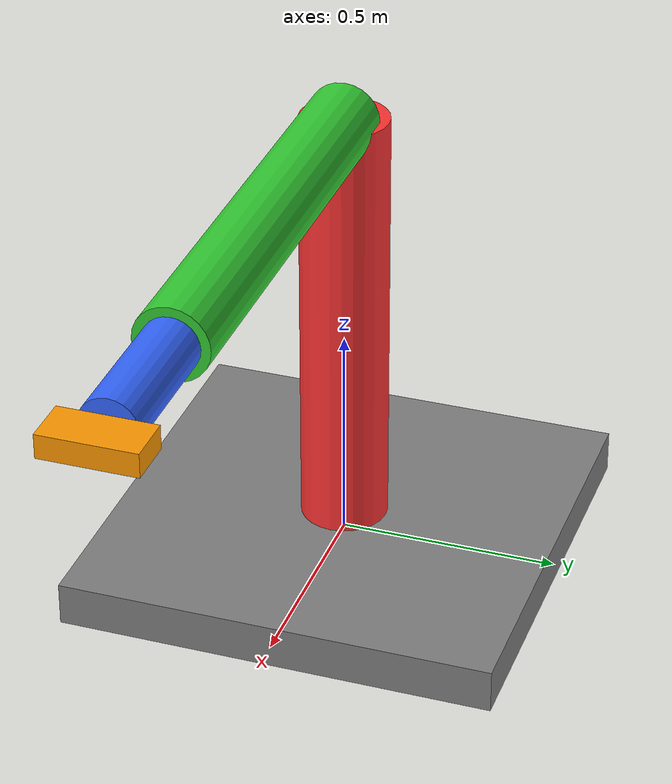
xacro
<?xml version="1.0"?>
<robot name="multi_joint_robot" xmlns:xacro="http://www.ros.org/wiki/xacro">

    <!-- ============ 파라미터 정의 ============ -->
    <xacro:property name="link_radius" value="0.1"/>
    <xacro:property name="link_length" value="1.0"/>

    <!-- ============ 색상(Material) 정의 ============ -->
    <material name="gray">    <color rgba="0.5 0.5 0.5 1.0"/> </material>
    <material name="red">     <color rgba="1.0 0.2 0.2 1.0"/> </material>
    <material name="green">   <color rgba="0.2 0.8 0.2 1.0"/> </material>
    <material name="blue">    <color rgba="0.2 0.4 1.0 1.0"/> </material>
    <material name="orange">  <color rgba="1.0 0.6 0.0 1.0"/> </material>

    <!-- ============ ① base_link (받침대) ============ -->
    <link name="base_link">
        <visual>
            <origin xyz="0 0 0"/>
            <geometry>
                <box size="1 1 0.1"/>   <!-- 얇은 받침대 형태 -->
            </geometry>
            <material name="gray"/>
        </visual>
    </link>

    <!-- ============ ② revolute joint: 제한된 회전 ============ -->
    <joint name="joint1_revolute" type="revolute">
        <parent link="base_link"/>
        <child link="link1"/>
        <origin xyz="0 0 0.05" rpy="0 0 0"/>
        <axis xyz="0 0 1"/>     <!-- z축 회전 (요잉) -->
        <limit lower="-1.57" upper="1.57" effort="1000" velocity="1.0"/>
    </joint>

    <link name="link1">
        <visual>
            <origin xyz="0 0 ${link_length/2}" rpy="0 0 0"/>
            <geometry>
                <cylinder radius="${link_radius}" length="${link_length}"/>
            </geometry>
            <material name="red"/>
        </visual>
    </link>

    <!-- ============ ③ continuous joint: 무한 회전 (limit 없음) ============ -->
    <joint name="joint2_continuous" type="continuous">
        <parent link="link1"/>
        <child link="link2"/>
        <origin xyz="0 0 ${link_length}" rpy="0 0 0"/>
        <axis xyz="1 0 0"/>     <!-- x축 회전 (피칭) -->
        <!-- continuous는 limit 태그 없음 -->
    </joint>

    <link name="link2">
        <visual>
            <origin xyz="${link_length/2} 0 0" rpy="0 1.5708 0"/>
            <geometry>
                <cylinder radius="${link_radius*0.8}" length="${link_length}"/>
            </geometry>
            <material name="green"/>
        </visual>
    </link>

    <!-- ============ ④ prismatic joint: 직선 운동 ============ -->
    <joint name="joint3_prismatic" type="prismatic">
        <parent link="link2"/>
        <child link="link3"/>
        <origin xyz="${link_length} 0 0" rpy="0 0 0"/>
        <axis xyz="1 0 0"/>     <!-- x축 방향으로 슬라이드 -->
        <limit lower="0.0" upper="0.5" effort="100" velocity="0.1"/>
    </joint>

    <link name="link3">
        <visual>
            <origin xyz="0.15 0 0" rpy="0 1.5708 0"/>
            <geometry>
                <cylinder radius="${link_radius*0.6}" length="0.3"/>
            </geometry>
            <material name="blue"/>
        </visual>
    </link>

    <!-- ============ ⑤ fixed joint: 말단 도구(고정) ============ -->
    <joint name="joint4_fixed" type="fixed">
        <parent link="link3"/>
        <child link="tool_link"/>
        <origin xyz="0.3 0 0" rpy="0 0 0"/>
    </joint>

    <link name="tool_link">
        <visual>
            <origin xyz="0.05 0 0" rpy="0 0 0"/>
            <geometry>
                <box size="0.1 0.2 0.05"/>
            </geometry>
            <material name="orange"/>
        </visual>
    </link>

</robot>
